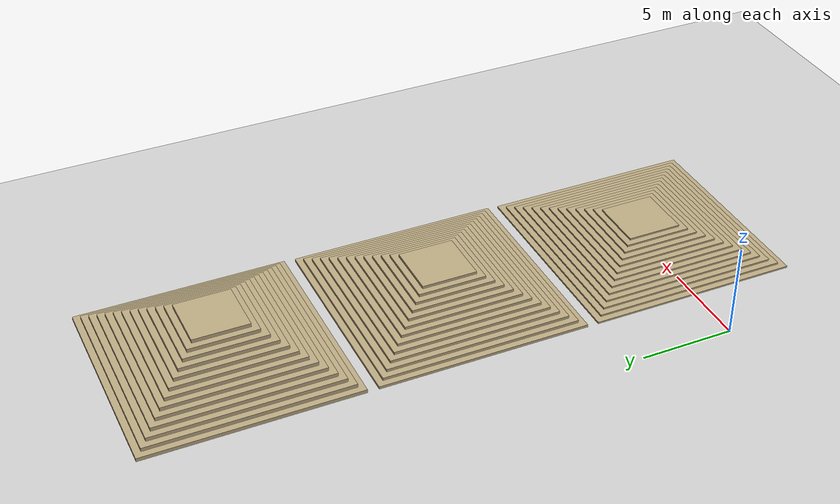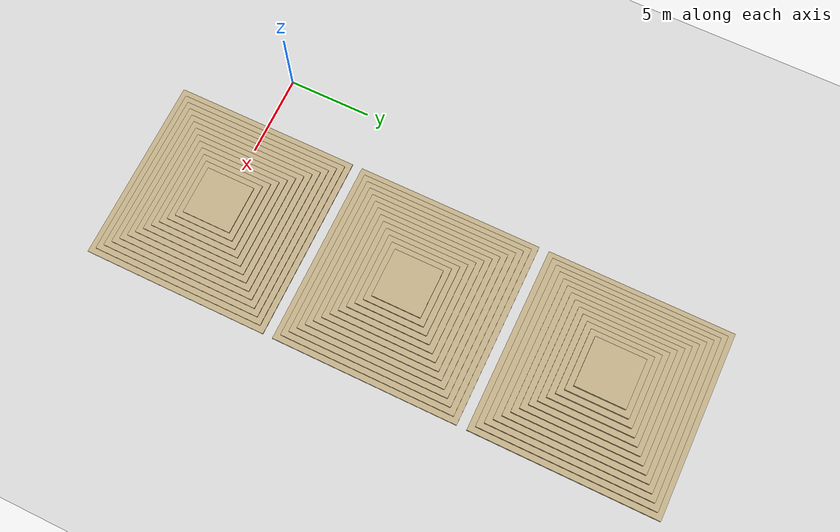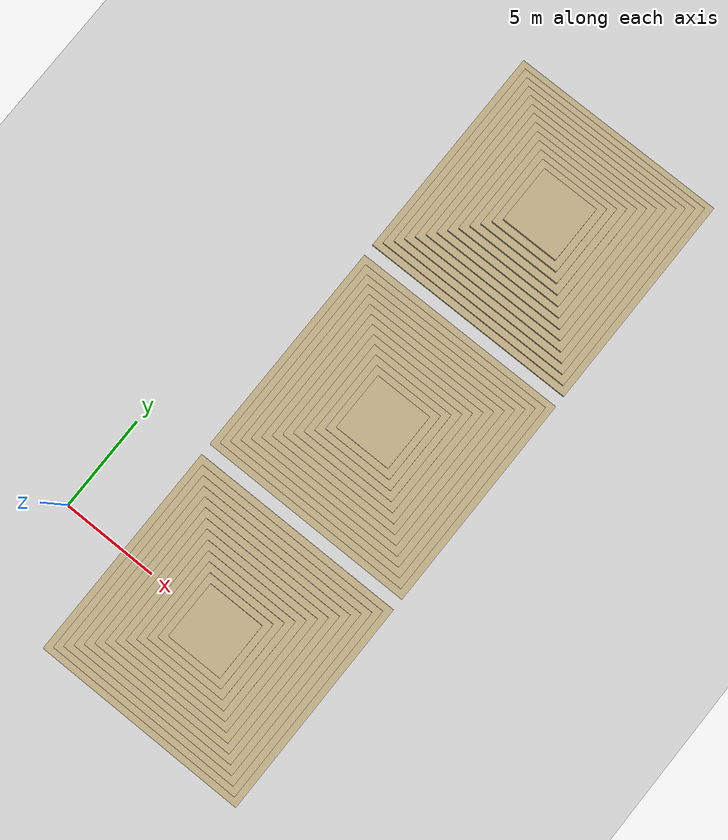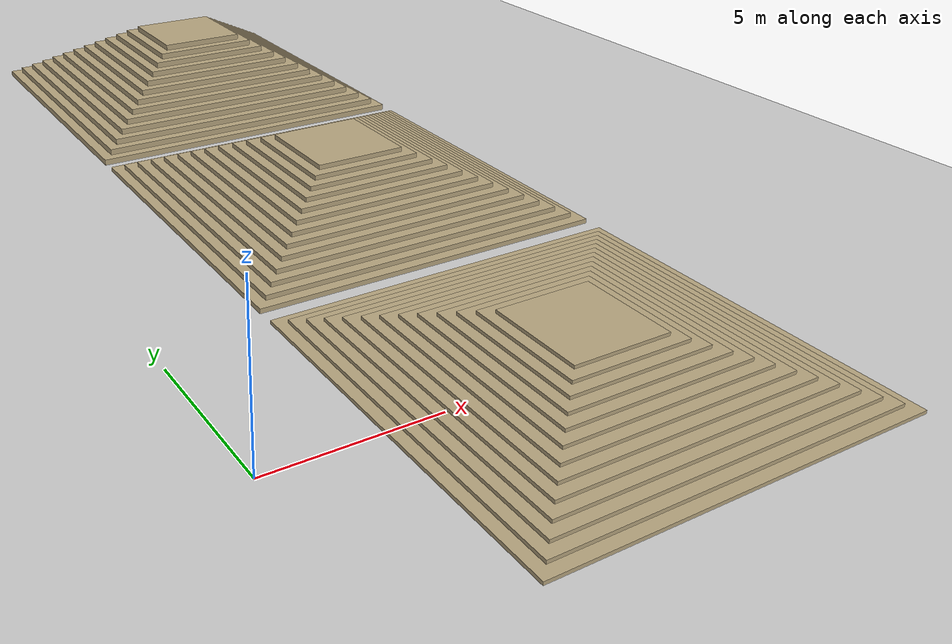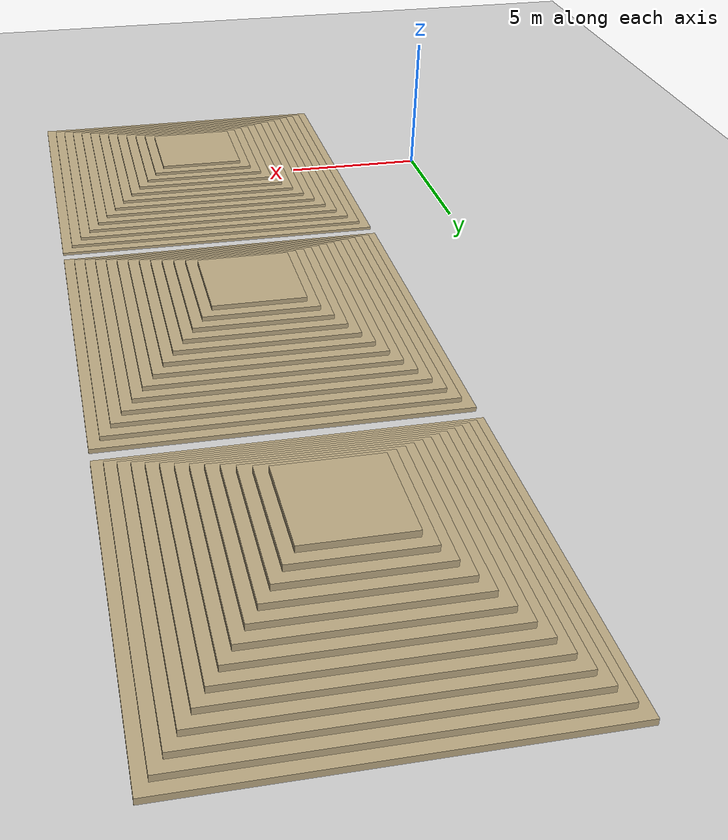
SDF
<?xml version="1.0"?>
<sdf version="1.6">
  <!-- We use a custom world for the rrbot so that the camera angle is launched correctly -->

  <world name="default">

    <plugin
      filename="gz-sim-physics-system"
      name="gz::sim::systems::Physics">
    </plugin>
    <plugin
      filename="gz-sim-air-pressure-system"
      name="gz::sim::systems::AirPressure">
    </plugin>
    <plugin
      filename="gz-sim-altimeter-system"
      name="gz::sim::systems::Altimeter">
    </plugin>
    <plugin
      filename="gz-sim-imu-system"
      name="gz::sim::systems::Imu">
    </plugin>
    <plugin
      filename="gz-sim-sensors-system"
      name="gz::sim::systems::Sensors">
      <render_engine>ogre2</render_engine>
    </plugin>
    <plugin
      filename="gz-sim-magnetometer-system"
      name="gz::sim::systems::Magnetometer">
    </plugin>
    <plugin
      filename="gz-sim-forcetorque-system"
      name="gz::sim::systems::ForceTorque">
    </plugin>
    <plugin
      filename="gz-sim-user-commands-system"
      name="gz::sim::systems::UserCommands">
    </plugin>
    <plugin
      filename="gz-sim-scene-broadcaster-system"
      name="gz::sim::systems::SceneBroadcaster">
    </plugin>
    <gravity>0 0 -9.81</gravity>

    <light type="directional" name="sun">
      <cast_shadows>true</cast_shadows>
      <pose>0 0 10 0 0 0</pose>
      <diffuse>0.8 0.8 0.8 1</diffuse>
      <specular>0.2 0.2 0.2 1</specular>
      <attenuation>
        <range>1000</range>
        <constant>0.9</constant>
        <linear>0.01</linear>
        <quadratic>0.001</quadratic>
      </attenuation>
      <direction>-0.5 0.1 -0.9</direction>
    </light>

    <model name="ground_plane">
      <static>true</static>
      <link name="link">
        <collision name="collision">
          <geometry>
            <plane>
              <normal>0 0 1</normal>
              <size>100 100</size>
            </plane>
          </geometry>
          <surface>
            <friction>
              <ode>
                <mu>0.8</mu>
                <mu2>0.8</mu2>
              </ode>
            </friction>
          </surface>
        </collision>
        <visual name="visual">
          <geometry>
            <plane>
              <normal>0 0 1</normal>
              <size>100 100</size>
            </plane>
          </geometry>
          <material>
            <ambient>0.8 0.8 0.8 1</ambient>
            <diffuse>0.8 0.8 0.8 1</diffuse>
            <specular>0.8 0.8 0.8 1</specular>
          </material>
        </visual>
      </link>
    </model>

    <model name="stepped_square_pyramid">
      <static>true</static>
      <pose>9 0 0 0 0 0</pose>
      <link name="pyramid_link">
        <collision name="step_01_collision">
          <pose>0 0 0.05 0 0 0</pose>
          <geometry>
            <box>
              <size>11.4 11.4 0.1</size>
            </box>
          </geometry>
          <surface>
            <friction>
              <ode>
                <mu>0.7</mu>
                <mu2>0.7</mu2>
              </ode>
            </friction>
          </surface>
        </collision>
        <visual name="step_01_visual">
          <pose>0 0 0.05 0 0 0</pose>
          <geometry>
            <box>
              <size>11.4 11.4 0.1</size>
            </box>
          </geometry>
          <material>
            <ambient>0.72 0.65 0.50 1</ambient>
            <diffuse>0.72 0.65 0.50 1</diffuse>
          </material>
        </visual>

        <collision name="step_02_collision">
          <pose>0 0 0.15 0 0 0</pose>
          <geometry><box><size>10.7 10.7 0.1</size></box></geometry>
          <surface><friction><ode><mu>0.7</mu><mu2>0.7</mu2></ode></friction></surface>
        </collision>
        <visual name="step_02_visual">
          <pose>0 0 0.15 0 0 0</pose>
          <geometry><box><size>10.7 10.7 0.1</size></box></geometry>
          <material><ambient>0.72 0.65 0.50 1</ambient><diffuse>0.72 0.65 0.50 1</diffuse></material>
        </visual>

        <collision name="step_03_collision">
          <pose>0 0 0.25 0 0 0</pose>
          <geometry><box><size>10.0 10.0 0.1</size></box></geometry>
          <surface><friction><ode><mu>0.7</mu><mu2>0.7</mu2></ode></friction></surface>
        </collision>
        <visual name="step_03_visual">
          <pose>0 0 0.25 0 0 0</pose>
          <geometry><box><size>10.0 10.0 0.1</size></box></geometry>
          <material><ambient>0.72 0.65 0.50 1</ambient><diffuse>0.72 0.65 0.50 1</diffuse></material>
        </visual>

        <collision name="step_04_collision">
          <pose>0 0 0.35 0 0 0</pose>
          <geometry><box><size>9.3 9.3 0.1</size></box></geometry>
          <surface><friction><ode><mu>0.7</mu><mu2>0.7</mu2></ode></friction></surface>
        </collision>
        <visual name="step_04_visual">
          <pose>0 0 0.35 0 0 0</pose>
          <geometry><box><size>9.3 9.3 0.1</size></box></geometry>
          <material><ambient>0.72 0.65 0.50 1</ambient><diffuse>0.72 0.65 0.50 1</diffuse></material>
        </visual>

        <collision name="step_05_collision">
          <pose>0 0 0.45 0 0 0</pose>
          <geometry><box><size>8.6 8.6 0.1</size></box></geometry>
          <surface><friction><ode><mu>0.7</mu><mu2>0.7</mu2></ode></friction></surface>
        </collision>
        <visual name="step_05_visual">
          <pose>0 0 0.45 0 0 0</pose>
          <geometry><box><size>8.6 8.6 0.1</size></box></geometry>
          <material><ambient>0.72 0.65 0.50 1</ambient><diffuse>0.72 0.65 0.50 1</diffuse></material>
        </visual>

        <collision name="step_06_collision">
          <pose>0 0 0.55 0 0 0</pose>
          <geometry><box><size>7.9 7.9 0.1</size></box></geometry>
          <surface><friction><ode><mu>0.7</mu><mu2>0.7</mu2></ode></friction></surface>
        </collision>
        <visual name="step_06_visual">
          <pose>0 0 0.55 0 0 0</pose>
          <geometry><box><size>7.9 7.9 0.1</size></box></geometry>
          <material><ambient>0.72 0.65 0.50 1</ambient><diffuse>0.72 0.65 0.50 1</diffuse></material>
        </visual>

        <collision name="step_07_collision">
          <pose>0 0 0.65 0 0 0</pose>
          <geometry><box><size>7.2 7.2 0.1</size></box></geometry>
          <surface><friction><ode><mu>0.7</mu><mu2>0.7</mu2></ode></friction></surface>
        </collision>
        <visual name="step_07_visual">
          <pose>0 0 0.65 0 0 0</pose>
          <geometry><box><size>7.2 7.2 0.1</size></box></geometry>
          <material><ambient>0.72 0.65 0.50 1</ambient><diffuse>0.72 0.65 0.50 1</diffuse></material>
        </visual>

        <collision name="step_08_collision">
          <pose>0 0 0.75 0 0 0</pose>
          <geometry><box><size>6.5 6.5 0.1</size></box></geometry>
          <surface><friction><ode><mu>0.7</mu><mu2>0.7</mu2></ode></friction></surface>
        </collision>
        <visual name="step_08_visual">
          <pose>0 0 0.75 0 0 0</pose>
          <geometry><box><size>6.5 6.5 0.1</size></box></geometry>
          <material><ambient>0.72 0.65 0.50 1</ambient><diffuse>0.72 0.65 0.50 1</diffuse></material>
        </visual>

        <collision name="step_09_collision">
          <pose>0 0 0.85 0 0 0</pose>
          <geometry><box><size>5.8 5.8 0.1</size></box></geometry>
          <surface><friction><ode><mu>0.7</mu><mu2>0.7</mu2></ode></friction></surface>
        </collision>
        <visual name="step_09_visual">
          <pose>0 0 0.85 0 0 0</pose>
          <geometry><box><size>5.8 5.8 0.1</size></box></geometry>
          <material><ambient>0.72 0.65 0.50 1</ambient><diffuse>0.72 0.65 0.50 1</diffuse></material>
        </visual>

        <collision name="step_10_collision">
          <pose>0 0 0.95 0 0 0</pose>
          <geometry><box><size>5.1 5.1 0.1</size></box></geometry>
          <surface><friction><ode><mu>0.7</mu><mu2>0.7</mu2></ode></friction></surface>
        </collision>
        <visual name="step_10_visual">
          <pose>0 0 0.95 0 0 0</pose>
          <geometry><box><size>5.1 5.1 0.1</size></box></geometry>
          <material><ambient>0.72 0.65 0.50 1</ambient><diffuse>0.72 0.65 0.50 1</diffuse></material>
        </visual>

        <collision name="step_11_collision">
          <pose>0 0 1.05 0 0 0</pose>
          <geometry><box><size>4.4 4.4 0.1</size></box></geometry>
          <surface><friction><ode><mu>0.7</mu><mu2>0.7</mu2></ode></friction></surface>
        </collision>
        <visual name="step_11_visual">
          <pose>0 0 1.05 0 0 0</pose>
          <geometry><box><size>4.4 4.4 0.1</size></box></geometry>
          <material><ambient>0.72 0.65 0.50 1</ambient><diffuse>0.72 0.65 0.50 1</diffuse></material>
        </visual>

        <collision name="step_12_collision">
          <pose>0 0 1.15 0 0 0</pose>
          <geometry><box><size>3.7 3.7 0.1</size></box></geometry>
          <surface><friction><ode><mu>0.7</mu><mu2>0.7</mu2></ode></friction></surface>
        </collision>
        <visual name="step_12_visual">
          <pose>0 0 1.15 0 0 0</pose>
          <geometry><box><size>3.7 3.7 0.1</size></box></geometry>
          <material><ambient>0.72 0.65 0.50 1</ambient><diffuse>0.72 0.65 0.50 1</diffuse></material>
        </visual>

        <collision name="step_13_collision">
          <pose>0 0 1.25 0 0 0</pose>
          <geometry><box><size>3.0 3.0 0.1</size></box></geometry>
          <surface><friction><ode><mu>0.7</mu><mu2>0.7</mu2></ode></friction></surface>
        </collision>
        <visual name="step_13_visual">
          <pose>0 0 1.25 0 0 0</pose>
          <geometry><box><size>3.0 3.0 0.1</size></box></geometry>
          <material><ambient>0.72 0.65 0.50 1</ambient><diffuse>0.72 0.65 0.50 1</diffuse></material>
        </visual>
      </link>
    </model>

    <model name="stepped_square_pyramid_015">
      <static>true</static>
      <pose>9 12 0 0 0 0</pose>
      <link name="pyramid_link">
        <collision name="step_01_collision">
          <pose>0 0 0.075 0 0 0</pose>
          <geometry><box><size>11.4 11.4 0.15</size></box></geometry>
          <surface><friction><ode><mu>0.7</mu><mu2>0.7</mu2></ode></friction></surface>
        </collision>
        <visual name="step_01_visual">
          <pose>0 0 0.075 0 0 0</pose>
          <geometry><box><size>11.4 11.4 0.15</size></box></geometry>
          <material><ambient>0.72 0.65 0.50 1</ambient><diffuse>0.72 0.65 0.50 1</diffuse></material>
        </visual>

        <collision name="step_02_collision">
          <pose>0 0 0.225 0 0 0</pose>
          <geometry><box><size>10.7 10.7 0.15</size></box></geometry>
          <surface><friction><ode><mu>0.8</mu><mu2>0.8</mu2></ode></friction></surface>
        </collision>
        <visual name="step_02_visual">
          <pose>0 0 0.225 0 0 0</pose>
          <geometry><box><size>10.7 10.7 0.15</size></box></geometry>
          <material><ambient>0.72 0.65 0.50 1</ambient><diffuse>0.72 0.65 0.50 1</diffuse></material>
        </visual>

        <collision name="step_03_collision">
          <pose>0 0 0.375 0 0 0</pose>
          <geometry><box><size>10.0 10.0 0.15</size></box></geometry>
          <surface><friction><ode><mu>0.8</mu><mu2>0.8</mu2></ode></friction></surface>
        </collision>
        <visual name="step_03_visual">
          <pose>0 0 0.375 0 0 0</pose>
          <geometry><box><size>10.0 10.0 0.15</size></box></geometry>
          <material><ambient>0.72 0.65 0.50 1</ambient><diffuse>0.72 0.65 0.50 1</diffuse></material>
        </visual>

        <collision name="step_04_collision">
          <pose>0 0 0.525 0 0 0</pose>
          <geometry><box><size>9.3 9.3 0.15</size></box></geometry>
          <surface><friction><ode><mu>0.8</mu><mu2>0.8</mu2></ode></friction></surface>
        </collision>
        <visual name="step_04_visual">
          <pose>0 0 0.525 0 0 0</pose>
          <geometry><box><size>9.3 9.3 0.15</size></box></geometry>
          <material><ambient>0.72 0.65 0.50 1</ambient><diffuse>0.72 0.65 0.50 1</diffuse></material>
        </visual>

        <collision name="step_05_collision">
          <pose>0 0 0.675 0 0 0</pose>
          <geometry><box><size>8.6 8.6 0.15</size></box></geometry>
          <surface><friction><ode><mu>0.8</mu><mu2>0.8</mu2></ode></friction></surface>
        </collision>
        <visual name="step_05_visual">
          <pose>0 0 0.675 0 0 0</pose>
          <geometry><box><size>8.6 8.6 0.15</size></box></geometry>
          <material><ambient>0.72 0.65 0.50 1</ambient><diffuse>0.72 0.65 0.50 1</diffuse></material>
        </visual>

        <collision name="step_06_collision">
          <pose>0 0 0.825 0 0 0</pose>
          <geometry><box><size>7.9 7.9 0.15</size></box></geometry>
          <surface><friction><ode><mu>0.8</mu><mu2>0.8</mu2></ode></friction></surface>
        </collision>
        <visual name="step_06_visual">
          <pose>0 0 0.825 0 0 0</pose>
          <geometry><box><size>7.9 7.9 0.15</size></box></geometry>
          <material><ambient>0.72 0.65 0.50 1</ambient><diffuse>0.72 0.65 0.50 1</diffuse></material>
        </visual>

        <collision name="step_07_collision">
          <pose>0 0 0.975 0 0 0</pose>
          <geometry><box><size>7.2 7.2 0.15</size></box></geometry>
          <surface><friction><ode><mu>0.8</mu><mu2>0.8</mu2></ode></friction></surface>
        </collision>
        <visual name="step_07_visual">
          <pose>0 0 0.975 0 0 0</pose>
          <geometry><box><size>7.2 7.2 0.15</size></box></geometry>
          <material><ambient>0.72 0.65 0.50 1</ambient><diffuse>0.72 0.65 0.50 1</diffuse></material>
        </visual>

        <collision name="step_08_collision">
          <pose>0 0 1.125 0 0 0</pose>
          <geometry><box><size>6.5 6.5 0.15</size></box></geometry>
          <surface><friction><ode><mu>0.8</mu><mu2>0.8</mu2></ode></friction></surface>
        </collision>
        <visual name="step_08_visual">
          <pose>0 0 1.125 0 0 0</pose>
          <geometry><box><size>6.5 6.5 0.15</size></box></geometry>
          <material><ambient>0.72 0.65 0.50 1</ambient><diffuse>0.72 0.65 0.50 1</diffuse></material>
        </visual>

        <collision name="step_09_collision">
          <pose>0 0 1.275 0 0 0</pose>
          <geometry><box><size>5.8 5.8 0.15</size></box></geometry>
          <surface><friction><ode><mu>0.8</mu><mu2>0.8</mu2></ode></friction></surface>
        </collision>
        <visual name="step_09_visual">
          <pose>0 0 1.275 0 0 0</pose>
          <geometry><box><size>5.8 5.8 0.15</size></box></geometry>
          <material><ambient>0.72 0.65 0.50 1</ambient><diffuse>0.72 0.65 0.50 1</diffuse></material>
        </visual>

        <collision name="step_10_collision">
          <pose>0 0 1.425 0 0 0</pose>
          <geometry><box><size>5.1 5.1 0.15</size></box></geometry>
          <surface><friction><ode><mu>0.8</mu><mu2>0.8</mu2></ode></friction></surface>
        </collision>
        <visual name="step_10_visual">
          <pose>0 0 1.425 0 0 0</pose>
          <geometry><box><size>5.1 5.1 0.15</size></box></geometry>
          <material><ambient>0.72 0.65 0.50 1</ambient><diffuse>0.72 0.65 0.50 1</diffuse></material>
        </visual>

        <collision name="step_11_collision">
          <pose>0 0 1.575 0 0 0</pose>
          <geometry><box><size>4.4 4.4 0.15</size></box></geometry>
          <surface><friction><ode><mu>0.8</mu><mu2>0.8</mu2></ode></friction></surface>
        </collision>
        <visual name="step_11_visual">
          <pose>0 0 1.575 0 0 0</pose>
          <geometry><box><size>4.4 4.4 0.15</size></box></geometry>
          <material><ambient>0.72 0.65 0.50 1</ambient><diffuse>0.72 0.65 0.50 1</diffuse></material>
        </visual>

        <collision name="step_12_collision">
          <pose>0 0 1.725 0 0 0</pose>
          <geometry><box><size>3.7 3.7 0.15</size></box></geometry>
          <surface><friction><ode><mu>0.8</mu><mu2>0.8</mu2></ode></friction></surface>
        </collision>
        <visual name="step_12_visual">
          <pose>0 0 1.725 0 0 0</pose>
          <geometry><box><size>3.7 3.7 0.15</size></box></geometry>
          <material><ambient>0.72 0.65 0.50 1</ambient><diffuse>0.72 0.65 0.50 1</diffuse></material>
        </visual>

        <collision name="step_13_collision">
          <pose>0 0 1.875 0 0 0</pose>
          <geometry><box><size>3.0 3.0 0.15</size></box></geometry>
          <surface><friction><ode><mu>0.8</mu><mu2>0.8</mu2></ode></friction></surface>
        </collision>
        <visual name="step_13_visual">
          <pose>0 0 1.875 0 0 0</pose>
          <geometry><box><size>3.0 3.0 0.15</size></box></geometry>
          <material><ambient>0.72 0.65 0.50 1</ambient><diffuse>0.72 0.65 0.50 1</diffuse></material>
        </visual>
      </link>
    </model>

    <model name="stepped_square_pyramid_020">
      <static>true</static>
      <pose>9 24 0 0 0 0</pose>
      <link name="pyramid_link">
        <collision name="step_01_collision">
          <pose>0 0 0.1 0 0 0</pose>
          <geometry><box><size>11.4 11.4 0.2</size></box></geometry>
          <surface><friction><ode><mu>0.8</mu><mu2>0.8</mu2></ode></friction></surface>
        </collision>
        <visual name="step_01_visual">
          <pose>0 0 0.1 0 0 0</pose>
          <geometry><box><size>11.4 11.4 0.2</size></box></geometry>
          <material><ambient>0.72 0.65 0.50 1</ambient><diffuse>0.72 0.65 0.50 1</diffuse></material>
        </visual>

        <collision name="step_02_collision">
          <pose>0 0 0.3 0 0 0</pose>
          <geometry><box><size>10.7 10.7 0.2</size></box></geometry>
          <surface><friction><ode><mu>0.8</mu><mu2>0.8</mu2></ode></friction></surface>
        </collision>
        <visual name="step_02_visual">
          <pose>0 0 0.3 0 0 0</pose>
          <geometry><box><size>10.7 10.7 0.2</size></box></geometry>
          <material><ambient>0.72 0.65 0.50 1</ambient><diffuse>0.72 0.65 0.50 1</diffuse></material>
        </visual>

        <collision name="step_03_collision">
          <pose>0 0 0.5 0 0 0</pose>
          <geometry><box><size>10.0 10.0 0.2</size></box></geometry>
          <surface><friction><ode><mu>0.8</mu><mu2>0.8</mu2></ode></friction></surface>
        </collision>
        <visual name="step_03_visual">
          <pose>0 0 0.5 0 0 0</pose>
          <geometry><box><size>10.0 10.0 0.2</size></box></geometry>
          <material><ambient>0.72 0.65 0.50 1</ambient><diffuse>0.72 0.65 0.50 1</diffuse></material>
        </visual>

        <collision name="step_04_collision">
          <pose>0 0 0.7 0 0 0</pose>
          <geometry><box><size>9.3 9.3 0.2</size></box></geometry>
          <surface><friction><ode><mu>0.8</mu><mu2>0.8</mu2></ode></friction></surface>
        </collision>
        <visual name="step_04_visual">
          <pose>0 0 0.7 0 0 0</pose>
          <geometry><box><size>9.3 9.3 0.2</size></box></geometry>
          <material><ambient>0.72 0.65 0.50 1</ambient><diffuse>0.72 0.65 0.50 1</diffuse></material>
        </visual>

        <collision name="step_05_collision">
          <pose>0 0 0.9 0 0 0</pose>
          <geometry><box><size>8.6 8.6 0.2</size></box></geometry>
          <surface><friction><ode><mu>0.8</mu><mu2>0.8</mu2></ode></friction></surface>
        </collision>
        <visual name="step_05_visual">
          <pose>0 0 0.9 0 0 0</pose>
          <geometry><box><size>8.6 8.6 0.2</size></box></geometry>
          <material><ambient>0.72 0.65 0.50 1</ambient><diffuse>0.72 0.65 0.50 1</diffuse></material>
        </visual>

        <collision name="step_06_collision">
          <pose>0 0 1.1 0 0 0</pose>
          <geometry><box><size>7.9 7.9 0.2</size></box></geometry>
          <surface><friction><ode><mu>0.8</mu><mu2>0.8</mu2></ode></friction></surface>
        </collision>
        <visual name="step_06_visual">
          <pose>0 0 1.1 0 0 0</pose>
          <geometry><box><size>7.9 7.9 0.2</size></box></geometry>
          <material><ambient>0.72 0.65 0.50 1</ambient><diffuse>0.72 0.65 0.50 1</diffuse></material>
        </visual>

        <collision name="step_07_collision">
          <pose>0 0 1.3 0 0 0</pose>
          <geometry><box><size>7.2 7.2 0.2</size></box></geometry>
          <surface><friction><ode><mu>0.8</mu><mu2>0.8</mu2></ode></friction></surface>
        </collision>
        <visual name="step_07_visual">
          <pose>0 0 1.3 0 0 0</pose>
          <geometry><box><size>7.2 7.2 0.2</size></box></geometry>
          <material><ambient>0.72 0.65 0.50 1</ambient><diffuse>0.72 0.65 0.50 1</diffuse></material>
        </visual>

        <collision name="step_08_collision">
          <pose>0 0 1.5 0 0 0</pose>
          <geometry><box><size>6.5 6.5 0.2</size></box></geometry>
          <surface><friction><ode><mu>0.8</mu><mu2>0.8</mu2></ode></friction></surface>
        </collision>
        <visual name="step_08_visual">
          <pose>0 0 1.5 0 0 0</pose>
          <geometry><box><size>6.5 6.5 0.2</size></box></geometry>
          <material><ambient>0.72 0.65 0.50 1</ambient><diffuse>0.72 0.65 0.50 1</diffuse></material>
        </visual>

        <collision name="step_09_collision">
          <pose>0 0 1.7 0 0 0</pose>
          <geometry><box><size>5.8 5.8 0.2</size></box></geometry>
          <surface><friction><ode><mu>0.8</mu><mu2>0.8</mu2></ode></friction></surface>
        </collision>
        <visual name="step_09_visual">
          <pose>0 0 1.7 0 0 0</pose>
          <geometry><box><size>5.8 5.8 0.2</size></box></geometry>
          <material><ambient>0.72 0.65 0.50 1</ambient><diffuse>0.72 0.65 0.50 1</diffuse></material>
        </visual>

        <collision name="step_10_collision">
          <pose>0 0 1.9 0 0 0</pose>
          <geometry><box><size>5.1 5.1 0.2</size></box></geometry>
          <surface><friction><ode><mu>0.8</mu><mu2>0.8</mu2></ode></friction></surface>
        </collision>
        <visual name="step_10_visual">
          <pose>0 0 1.9 0 0 0</pose>
          <geometry><box><size>5.1 5.1 0.2</size></box></geometry>
          <material><ambient>0.72 0.65 0.50 1</ambient><diffuse>0.72 0.65 0.50 1</diffuse></material>
        </visual>

        <collision name="step_11_collision">
          <pose>0 0 2.1 0 0 0</pose>
          <geometry><box><size>4.4 4.4 0.2</size></box></geometry>
          <surface><friction><ode><mu>0.8</mu><mu2>0.8</mu2></ode></friction></surface>
        </collision>
        <visual name="step_11_visual">
          <pose>0 0 2.1 0 0 0</pose>
          <geometry><box><size>4.4 4.4 0.2</size></box></geometry>
          <material><ambient>0.72 0.65 0.50 1</ambient><diffuse>0.72 0.65 0.50 1</diffuse></material>
        </visual>

        <collision name="step_12_collision">
          <pose>0 0 2.3 0 0 0</pose>
          <geometry><box><size>3.7 3.7 0.2</size></box></geometry>
          <surface><friction><ode><mu>0.8</mu><mu2>0.8</mu2></ode></friction></surface>
        </collision>
        <visual name="step_12_visual">
          <pose>0 0 2.3 0 0 0</pose>
          <geometry><box><size>3.7 3.7 0.2</size></box></geometry>
          <material><ambient>0.72 0.65 0.50 1</ambient><diffuse>0.72 0.65 0.50 1</diffuse></material>
        </visual>

        <collision name="step_13_collision">
          <pose>0 0 2.5 0 0 0</pose>
          <geometry><box><size>3.0 3.0 0.2</size></box></geometry>
          <surface><friction><ode><mu>0.8</mu><mu2>0.8</mu2></ode></friction></surface>
        </collision>
        <visual name="step_13_visual">
          <pose>0 0 2.5 0 0 0</pose>
          <geometry><box><size>3.0 3.0 0.2</size></box></geometry>
          <material><ambient>0.72 0.65 0.50 1</ambient><diffuse>0.72 0.65 0.50 1</diffuse></material>
        </visual>
      </link>
    </model>

    <!-- Focus camera on tall pendulum -->
    <gui fullscreen='0'>
      <camera name='user_camera'>
        <pose>4.927360 -4.376610 3.740080 0.000000 0.275643 2.356190</pose>
        <view_controller>orbit</view_controller>
      </camera>
    </gui>

    <physics name="update_rate" type="ode">
      <real_time_update_rate>1000</real_time_update_rate>
      <max_step_size>0.001</max_step_size>
      <max_contacts>10</max_contacts>
      <bullet>
        <solver>
          <iters>100</iters>
          <sor>1.55</sor>
        </solver>
        <constraints>
          <contact_surface_layer>0.2</contact_surface_layer>
          <cfm>0.005</cfm>
          <erp>0.2</erp>
        </constraints>
      </bullet>
      <ode>
        <solver>
          <iters>50</iters>
          <sor>1.20</sor>
        </solver>
        <constraints>
          <contact_surface_layer>0.0002</contact_surface_layer>
          <contact_max_correcting_vel>500</contact_max_correcting_vel>
          <cfm>0.000001</cfm>
          <erp>0.3</erp>
        </constraints>
      </ode>
    </physics>

  </world>
</sdf>
